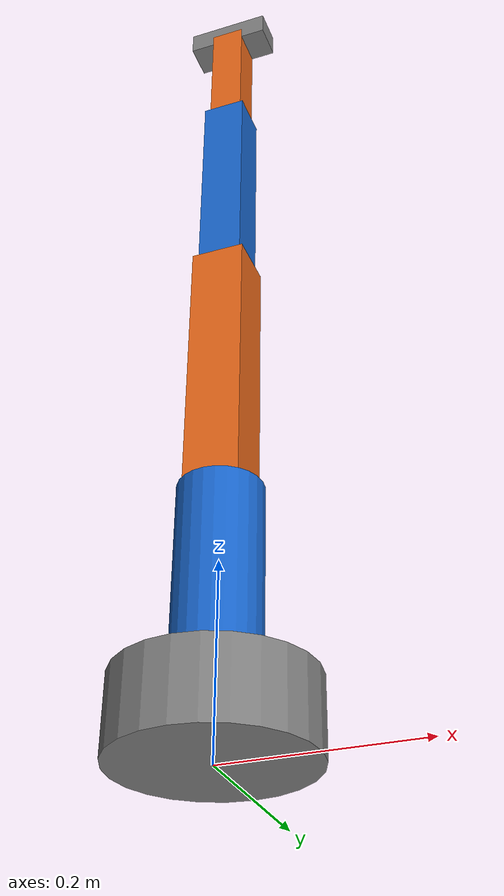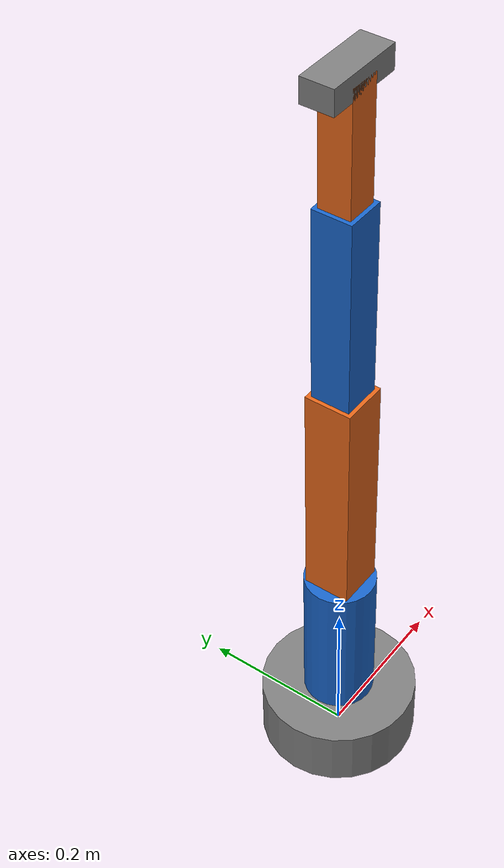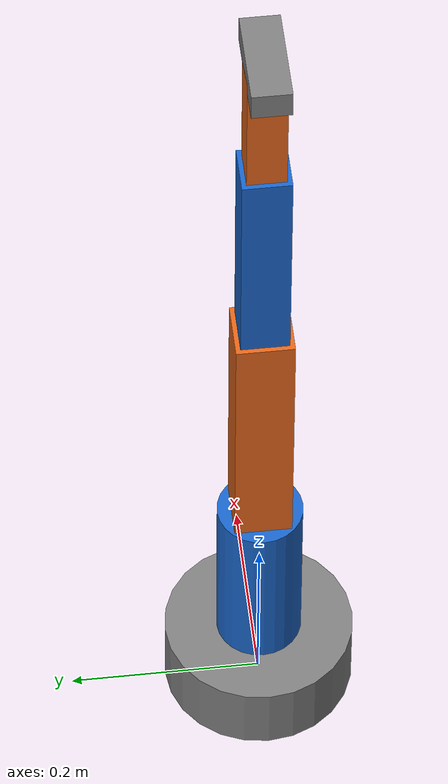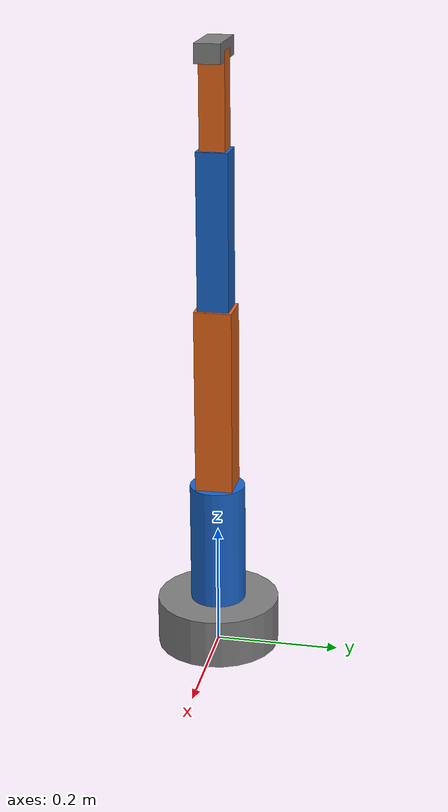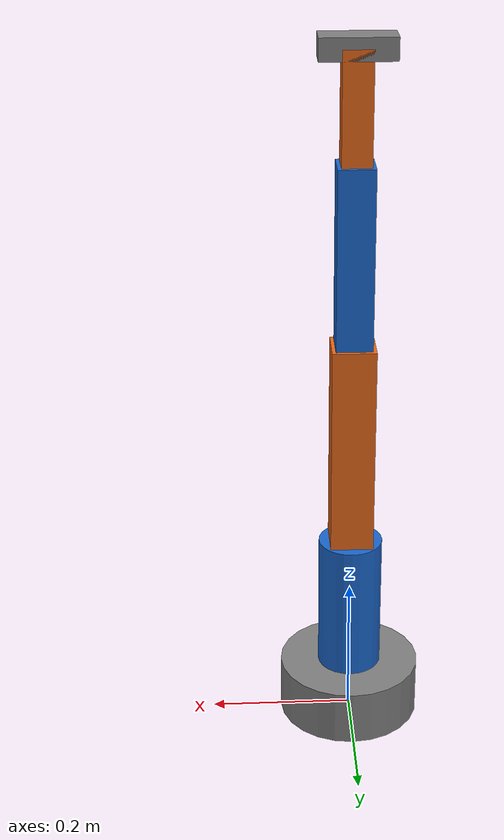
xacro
<?xml version="1.0"?>

<robot xmlns:xacro="http://www.ros.org/wiki/xacro"
       name="samarth_arm">
  <!-- MATERIALS -->

  <material name="blue">
    <color rgba="0.1 0.4 0.8 1.0"/>
  </material>

  <material name="gray">
    <color rgba="0.5 0.5 0.5 1.0"/>
  </material>

  <material name="orange">
    <color rgba="0.9 0.4 0.1 1.0"/>
  </material>

  <!-- BASE LINK -->

  <link name="base_link">

    <visual>
      <origin xyz="0 0 0.04" rpy="0 0 0"/>
      <geometry>
        <cylinder radius="0.10" length="0.08"/>
      </geometry>
      <material name="gray"/>
    </visual>

    <collision>
      <origin xyz="0 0 0.04" rpy="0 0 0"/>
      <geometry>
        <cylinder radius="0.10" length="0.08"/>
      </geometry>
    </collision>

    <inertial>
      <origin xyz="0 0 0.04" rpy="0 0 0"/>
      <mass value="2.0"/>
      <inertia
        ixx="0.00607"
        ixy="0.0"
        ixz="0.0"
        iyy="0.00607"
        iyz="0.0"
        izz="0.01000"/>
    </inertial>

  </link>

  <!-- JOINT 1 -->

  <joint name="joint1" type="revolute">

    <parent link="base_link"/>
    <child link="link1"/>

    <origin xyz="0 0 0.08" rpy="0 0 0"/>

    <axis xyz="0 0 1"/>

    <limit
      lower="-3.14"
      upper="3.14"
      effort="20"
      velocity="1.0"/>

  </joint>

  <!-- LINK 1 -->

  <link name="link1">

    <visual>
      <origin xyz="0 0 0.10" rpy="0 0 0"/>
      <geometry>
        <cylinder radius="0.045" length="0.20"/>
      </geometry>
      <material name="blue"/>
    </visual>

    <collision>
      <origin xyz="0 0 0.10" rpy="0 0 0"/>
      <geometry>
        <cylinder radius="0.045" length="0.20"/>
      </geometry>
    </collision>

    <inertial>
      <origin xyz="0 0 0.10" rpy="0 0 0"/>
      <mass value="1.0"/>
      <inertia
        ixx="0.00384"
        ixy="0.0"
        ixz="0.0"
        iyy="0.00384"
        iyz="0.0"
        izz="0.00101"/>
    </inertial>

  </link>

  <!-- JOINT 2 -->

  <joint name="joint2" type="revolute">

    <parent link="link1"/>
    <child link="link2"/>

    <origin xyz="0 0 0.20" rpy="0 0 0"/>

    <axis xyz="0 1 0"/>

    <limit
      lower="-1.57"
      upper="1.57"
      effort="20"
      velocity="1.0"/>

  </joint>

  <!-- LINK 2 -->

  <link name="link2">

    <visual>
      <origin xyz="0 0 0.15" rpy="0 0 0"/>
      <geometry>
        <box size="0.06 0.06 0.30"/>
      </geometry>
      <material name="orange"/>
    </visual>

    <collision>
      <origin xyz="0 0 0.15" rpy="0 0 0"/>
      <geometry>
        <box size="0.06 0.06 0.30"/>
      </geometry>
    </collision>

    <inertial>
      <origin xyz="0 0 0.15" rpy="0 0 0"/>
      <mass value="0.8"/>
      <inertia
        ixx="0.00624"
        ixy="0.0"
        ixz="0.0"
        iyy="0.00624"
        iyz="0.0"
        izz="0.00048"/>
    </inertial>

  </link>

  <!-- JOINT 3 -->

  <joint name="joint3" type="revolute">

    <parent link="link2"/>
    <child link="link3"/>

    <origin xyz="0 0 0.30" rpy="0 0 0"/>

    <axis xyz="0 1 0"/>

    <limit
      lower="-2.0"
      upper="2.0"
      effort="15"
      velocity="1.0"/>

  </joint>

  <!-- LINK 3 -->

  <link name="link3">

    <visual>
      <origin xyz="0 0 0.125" rpy="0 0 0"/>
      <geometry>
        <box size="0.05 0.05 0.25"/>
      </geometry>
      <material name="blue"/>
    </visual>

    <collision>
      <origin xyz="0 0 0.125" rpy="0 0 0"/>
      <geometry>
        <box size="0.05 0.05 0.25"/>
      </geometry>
    </collision>

    <inertial>
      <origin xyz="0 0 0.125" rpy="0 0 0"/>
      <mass value="0.6"/>
      <inertia
        ixx="0.00325"
        ixy="0.0"
        ixz="0.0"
        iyy="0.00325"
        iyz="0.0"
        izz="0.00025"/>
    </inertial>

  </link>

  <!-- JOINT 4 -->

  <joint name="joint4" type="revolute">

    <parent link="link3"/>
    <child link="link4"/>

    <origin xyz="0 0 0.25" rpy="0 0 0"/>

    <axis xyz="0 1 0"/>

    <limit
      lower="-2.0"
      upper="2.0"
      effort="10"
      velocity="1.0"/>

  </joint>

  <!-- LINK 4 -->

  <link name="link4">

    <visual>
      <origin xyz="0 0 0.075" rpy="0 0 0"/>
      <geometry>
        <box size="0.04 0.04 0.15"/>
      </geometry>
      <material name="orange"/>
    </visual>

    <collision>
      <origin xyz="0 0 0.075" rpy="0 0 0"/>
      <geometry>
        <box size="0.04 0.04 0.15"/>
      </geometry>
    </collision>

    <inertial>
      <origin xyz="0 0 0.075" rpy="0 0 0"/>
      <mass value="0.4"/>
      <inertia
        ixx="0.00080"
        ixy="0.0"
        ixz="0.0"
        iyy="0.00080"
        iyz="0.0"
        izz="0.00011"/>
    </inertial>

  </link>

  <!-- END EFFECTOR -->

  <joint name="end_effector_joint" type="fixed">

    <parent link="link4"/>
    <child link="end_effector"/>

    <origin xyz="0 0 0.15" rpy="0 0 0"/>

  </joint>

  <link name="end_effector">

    <visual>
      <geometry>
        <box size="0.10 0.04 0.03"/>
      </geometry>
      <material name="gray"/>
    </visual>

    <collision>
      <geometry>
        <box size="0.10 0.04 0.03"/>
      </geometry>
    </collision>

    <inertial>
      <mass value="0.2"/>
      <inertia
        ixx="0.00004"
        ixy="0.0"
        ixz="0.0"
        iyy="0.00018"
        iyz="0.0"
        izz="0.00019"/>
    </inertial>

  </link>

  <!-- ROS 2 CONTROL -->

  <ros2_control name="GazeboSimSystem" type="system">

    <hardware>
      <plugin>gz_ros2_control/GazeboSimSystem</plugin>
    </hardware>
    <joint name="joint1">

      <command_interface name="position">
        <param name="min">-3.14</param>
        <param name="max">3.14</param>
      </command_interface>

      <command_interface name="effort">
        <param name="min">-20.0</param>
        <param name="max">20.0</param>
      </command_interface>

      <state_interface name="position">
        <param name="initial_value">0.0</param>
      </state_interface>

      <state_interface name="velocity"/>

     </joint>

     <joint name="joint2">
      <command_interface name="position">
        <param name="min">-1.57</param>
        <param name="max">1.57</param>
      </command_interface>

      <command_interface name="effort">
        <param name="min">-20.0</param>
        <param name="max">20.0</param>
      </command_interface>

      <state_interface name="position">
        <param name="initial_value">0.0</param>
      </state_interface>

      <state_interface name="velocity"/>
    </joint>

    <joint name="joint3">
      <command_interface name="position">
        <param name="min">-2.0</param>
        <param name="max">2.0</param>
      </command_interface>

      <command_interface name="effort">
        <param name="min">-15.0</param>
        <param name="max">15.0</param>
      </command_interface>

      <state_interface name="position">
        <param name="initial_value">0.0</param>
      </state_interface>

      <state_interface name="velocity"/>
    </joint>

    <joint name="joint4">
      <command_interface name="position">
        <param name="min">-2.0</param>
        <param name="max">2.0</param>
      </command_interface>

      <command_interface name="effort">
        <param name="min">-10.0</param>
        <param name="max">10.0</param>
      </command_interface>

      <state_interface name="position">
        <param name="initial_value">0.0</param>
      </state_interface>

      <state_interface name="velocity"/>
    </joint>

  </ros2_control>

  <!-- GAZEBO ROS 2 CONTROL PLUGIN -->

  <gazebo>

    <plugin filename="gz_ros2_control-system"
            name="gz_ros2_control::GazeboSimROS2ControlPlugin">

      <robot_param>robot_description</robot_param>

      <robot_param_node>robot_state_publisher</robot_param_node>

      <parameters>
        $(find samarth_arm_control)/config/controllers.yaml
      </parameters>

      <controller_manager_name>
        controller_manager
      </controller_manager_name>

    </plugin>

  </gazebo>
<gazebo>
  <joint name="world_fixed" type="fixed">
    <parent>world</parent>
    <child>base_link</child>
  </joint>
</gazebo>
</robot>
